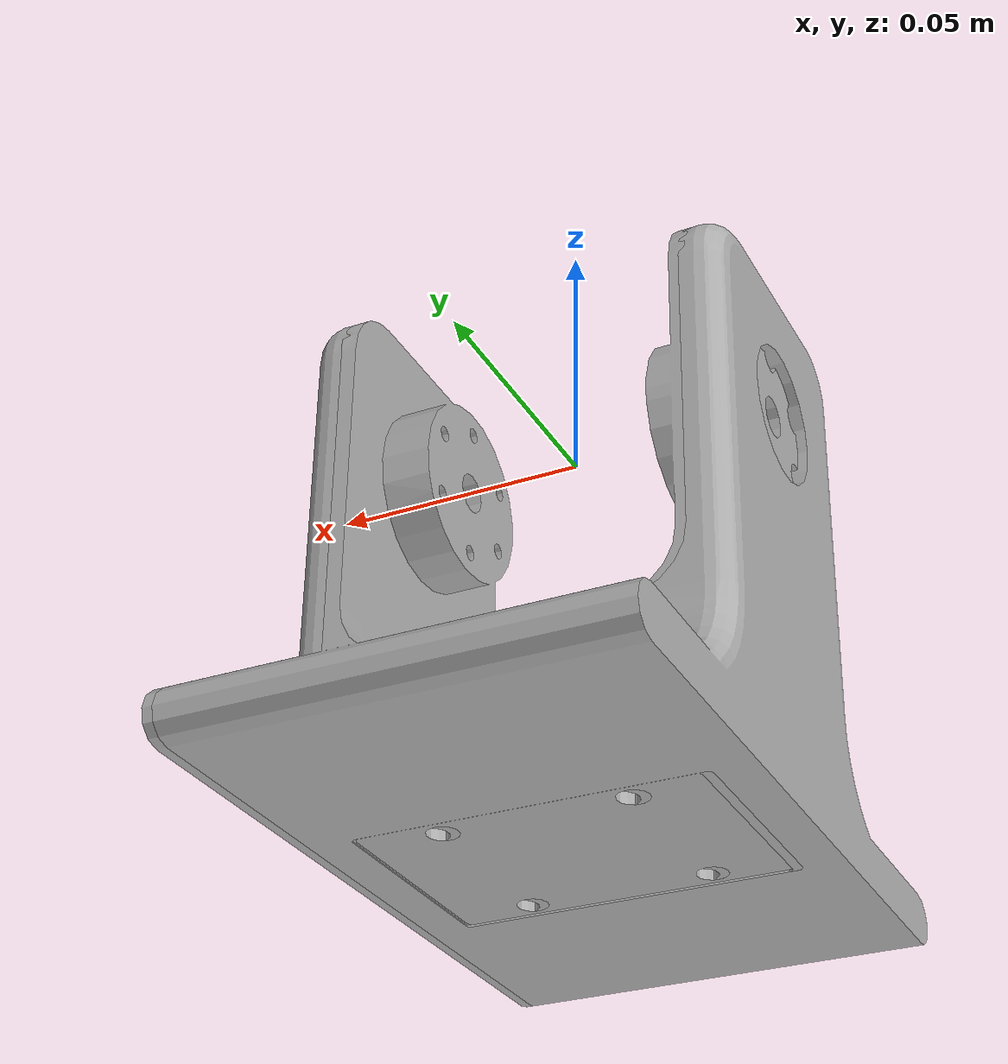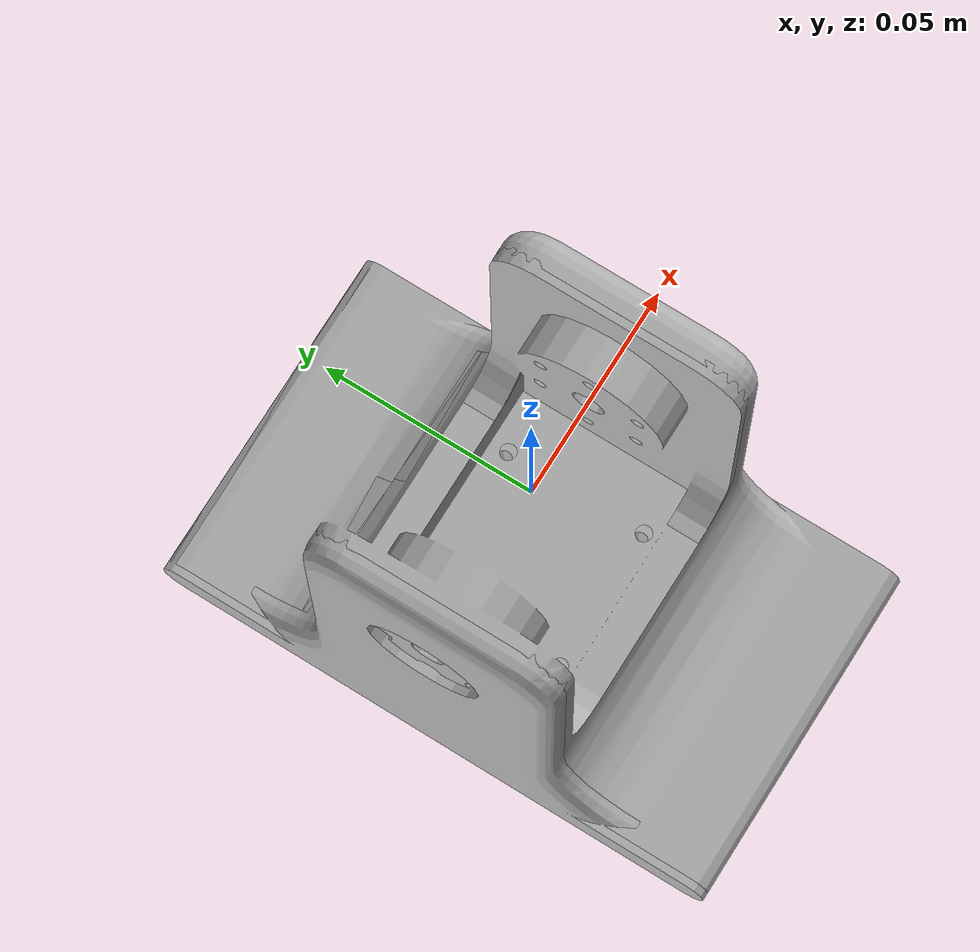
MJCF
<mujoco model="Xuanwu">
  <compiler angle="radian" meshdir="../meshes/"/>

  <asset>
    <mesh name="base_link" file="base_link.STL"/>
    <mesh name="link_1" file="link_1.STL"/>
    <mesh name="link_2" file="link_2.STL"/>
    <mesh name="link_3" file="link_3.STL"/>
    <mesh name="link_4" file="link_4.STL"/>
    <mesh name="link_5" file="link_5.STL"/>
    <mesh name="link_6" file="link_6.STL"/>
    <mesh name="link_7" file="link_7.STL"/>
    <mesh name="link_8" file="link_8.STL"/>
    <mesh name="link_9" file="link_9.STL"/>
    <mesh name="link_10" file="link_10.STL"/>
  </asset>

  <worldbody>
    <geom type="mesh" contype="0" conaffinity="0" group="1" density="0" rgba="0.75294 0.75294 0.75294 1" mesh="base_link"/>
    <geom type="mesh" rgba="0.75294 0.75294 0.75294 1" mesh="base_link"/>
    <body name="link_1">
      <inertial pos="-0.08 -0.06 -0.074" quat="0.680193 -0.193229 0.193229 0.680193" mass="0.547" diaginertia="0.00166667 0.00166667 0.00166667"/>
      <joint name="joint_1" pos="0 0 0" axis="0 0 1" range="-0.5 0.5" actuatorfrcrange="-7 7"/>
      <geom type="mesh" contype="0" conaffinity="0" group="1" density="0" rgba="0.69804 0.69804 0.69804 1" mesh="link_1"/>
      <geom type="mesh" rgba="0.69804 0.69804 0.69804 1" mesh="link_1"/>
      <body name="link_2">
        <inertial pos="-0.073 -0.006 -0.111" mass="0.378" diaginertia="0.0001 0.0001 0.0001"/>
        <joint name="joint_2" pos="0 0 0" axis="0 1 0" range="-0.7 0.7" actuatorfrcrange="-7 7"/>
        <geom type="mesh" contype="0" conaffinity="0" group="1" density="0" rgba="0.69804 0.69804 0.69804 1" mesh="link_2"/>
        <geom type="mesh" rgba="0.69804 0.69804 0.69804 1" mesh="link_2"/>
        <body name="link_3">
          <inertial pos="-0.072 -0.001 -0.261" mass="0.436" diaginertia="0.001 0.001 0.0001"/>
          <joint name="joint_3" pos="0 0 0" axis="1 0 0" range="-0.25 1.57" actuatorfrcrange="-7 7"/>
          <geom type="mesh" contype="0" conaffinity="0" group="1" density="0" rgba="0.698039 0.698039 0.698039 1" mesh="link_3"/>
          <geom type="mesh" rgba="0.698039 0.698039 0.698039 1" mesh="link_3"/>
          <body name="link_4">
            <inertial pos="-0.072 -0.001 -0.441" mass="0.436" diaginertia="0.001 0.001 0.0001"/>
            <joint name="joint_4" pos="0 0 0" axis="1 0 0" range="-1.57 1.57" actuatorfrcrange="-7 7"/>
            <geom type="mesh" contype="0" conaffinity="0" group="1" density="0" rgba="0.698039 0.698039 0.698039 1" mesh="link_4"/>
            <geom type="mesh" rgba="0.698039 0.698039 0.698039 1" mesh="link_4"/>
            <body name="link_5">
              <inertial pos="-0.071 -0.001 -0.524" mass="0.105" diaginertia="0.0001 0.0001 0.0001"/>
              <joint name="joint_5" pos="0 0 0" axis="1 0 0" range="-1.57 1.57" actuatorfrcrange="-7 7"/>
              <geom type="mesh" contype="0" conaffinity="0" group="1" density="0" rgba="0.698039 0.698039 0.698039 1" mesh="link_5"/>
              <geom type="mesh" rgba="0.698039 0.698039 0.698039 1" mesh="link_5"/>
            </body>
          </body>
        </body>
      </body>
    </body>
    <body name="link_6">
      <inertial pos="0.08 -0.06 -0.074" quat="0.680193 -0.193229 0.193229 0.680193" mass="0.547" diaginertia="0.00166667 0.00166667 0.00166667"/>
      <joint name="joint_6" pos="0 0 0" axis="0 0 1" range="-0.5 0.5" actuatorfrcrange="-7 7"/>
      <geom type="mesh" contype="0" conaffinity="0" group="1" density="0" rgba="0.698039 0.698039 0.698039 1" mesh="link_6"/>
      <geom type="mesh" rgba="0.698039 0.698039 0.698039 1" mesh="link_6"/>
      <body name="link_7">
        <inertial pos="0.073 -0.006 -0.111" mass="0.378" diaginertia="0.0001 0.0001 0.0001"/>
        <joint name="joint_7" pos="0 0 0" axis="0 1 0" range="-0.7 0.7" actuatorfrcrange="-7 7"/>
        <geom type="mesh" contype="0" conaffinity="0" group="1" density="0" rgba="1 1 1 1" mesh="link_7"/>
        <geom type="mesh" rgba="1 1 1 1" mesh="link_7"/>
        <body name="link_8">
          <inertial pos="0.072 -0.001 -0.261" mass="0.436" diaginertia="0.001 0.001 0.0001"/>
          <joint name="joint_8" pos="0 0 0" axis="1 0 0" range="-0.25 1.57" actuatorfrcrange="-7 7"/>
          <geom type="mesh" contype="0" conaffinity="0" group="1" density="0" rgba="0.698039 0.698039 0.698039 1" mesh="link_8"/>
          <geom type="mesh" rgba="0.698039 0.698039 0.698039 1" mesh="link_8"/>
          <body name="link_9">
            <inertial pos="0.072 -0.001 -0.441" mass="0.436" diaginertia="0.001 0.001 0.0001"/>
            <joint name="joint_9" pos="0 0 0" axis="1 0 0" range="-1.57 1.57" actuatorfrcrange="-7 7"/>
            <geom type="mesh" contype="0" conaffinity="0" group="1" density="0" rgba="0.698039 0.698039 0.698039 1" mesh="link_9"/>
            <geom type="mesh" rgba="0.698039 0.698039 0.698039 1" mesh="link_9"/>
            <body name="link_10">
              <inertial pos="0.071 -0.001 -0.524" mass="0.105" diaginertia="0.0001 0.0001 0.0001"/>
              <joint name="joint_10" pos="0 0 0" axis="1 0 0" range="-1.57 1.57" actuatorfrcrange="-7 7"/>
              <geom type="mesh" contype="0" conaffinity="0" group="1" density="0" rgba="0.698039 0.698039 0.698039 1" mesh="link_10"/>
              <geom type="mesh" rgba="0.698039 0.698039 0.698039 1" mesh="link_10"/>
            </body>
          </body>
        </body>
      </body>
    </body>
  </worldbody>
</mujoco>
